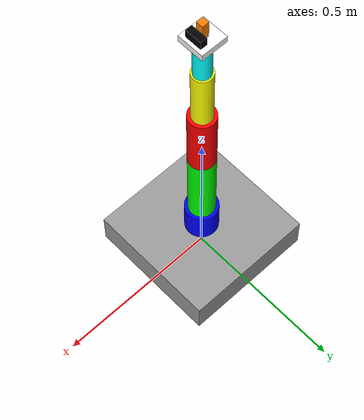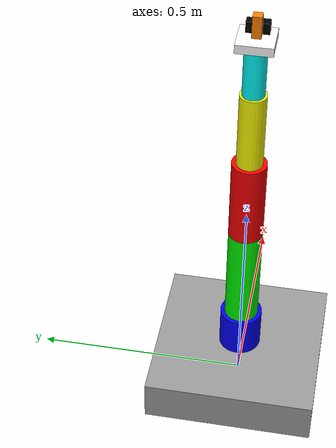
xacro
<?xml version="1.0"?>
<robot name="my_robot" xmlns:xacro="http://www.ros.org/wiki/xacro">
<link name="world"/>

  <joint name="base_joint" type="fixed">
    <parent link="world"/>
    <child link="base_link"/>
    <origin xyz="0 0 0" rpy="0 0 0"/>
  </joint>

  <!-- SAFE INERTIAL MACRO -->
  <xacro:macro name="box_inertial" params="mass x y z">
    <inertial>
      <origin xyz="0 0 ${z/2}"/>
      <mass value="${mass}"/>
      <inertia
        ixx="${mass * (y*y + z*z) / 12}"
        iyy="${mass * (x*x + z*z) / 12}"
        izz="${mass * (x*x + y*y) / 12}"
        ixy="0.0"
        ixz="0.0"
        iyz="0.0"/>
    </inertial>
  </xacro:macro>

  <!-- BASE -->
  <link name="base_link">
    <xacro:box_inertial mass="5.0" x="0.4" y="0.4" z="0.1"/>

    <visual>
      <origin xyz="0 0 0.05"/>
      <geometry><box size="0.4 0.4 0.1"/></geometry>
      <material name="gray"><color rgba="0.6 0.6 0.6 1"/></material>
    </visual>

    <collision>
      <origin xyz="0 0 0.05"/>
      <geometry><box size="0.4 0.4 0.1"/></geometry>
    </collision>
  </link>

  <!-- LINKS -->

  <link name="shoulder_link">
    <xacro:box_inertial mass="2.0" x="0.1" y="0.1" z="0.1"/>
    <visual>
      <origin xyz="0 0 0.05"/>
      <geometry><cylinder radius="0.05" length="0.1"/></geometry>
      <material name="blue"><color rgba="0 0 1 1"/></material>
    </visual>
    <collision>
      <origin xyz="0 0 0.05"/>
      <geometry><cylinder radius="0.05" length="0.1"/></geometry>
    </collision>
  </link>

  <link name="arm_link">
    <xacro:box_inertial mass="1.5" x="0.08" y="0.08" z="0.25"/>
    <visual>
      <origin xyz="0 0 0.125"/>
      <geometry><cylinder radius="0.04" length="0.25"/></geometry>
      <material name="green"><color rgba="0 1 0 1"/></material>
    </visual>
    <collision>
      <origin xyz="0 0 0.125"/>
      <geometry><cylinder radius="0.04" length="0.25"/></geometry>
    </collision>
  </link>

  <link name="elbow_link">
    <xacro:box_inertial mass="1.2" x="0.08" y="0.08" z="0.2"/>
    <visual>
      <origin xyz="0 0 0.1"/>
      <geometry><cylinder radius="0.04" length="0.2"/></geometry>
      <material name="red"><color rgba="1 0 0 1"/></material>
    </visual>
    <collision>
      <origin xyz="0 0 0.1"/>
      <geometry><cylinder radius="0.04" length="0.2"/></geometry>
    </collision>
  </link>

  <link name="forearm_link">
    <xacro:box_inertial mass="1.0" x="0.06" y="0.06" z="0.18"/>
    <visual>
      <origin xyz="0 0 0.09"/>
      <geometry><cylinder radius="0.03" length="0.18"/></geometry>
      <material name="yellow"><color rgba="1 1 0 1"/></material>
    </visual>
    <collision>
      <origin xyz="0 0 0.09"/>
      <geometry><cylinder radius="0.03" length="0.18"/></geometry>
    </collision>
  </link>

  <link name="wrist_link">
    <xacro:box_inertial mass="0.8" x="0.05" y="0.05" z="0.12"/>
    <visual>
      <origin xyz="0 0 0.06"/>
      <geometry><cylinder radius="0.025" length="0.12"/></geometry>
      <material name="cyan"><color rgba="0 1 1 1"/></material>
    </visual>
    <collision>
      <origin xyz="0 0 0.06"/>
      <geometry><cylinder radius="0.025" length="0.12"/></geometry>
    </collision>
  </link>

  <link name="hand_link">
    <xacro:box_inertial mass="0.5" x="0.08" y="0.08" z="0.02"/>
    <visual>
      <origin xyz="0 0 0.01"/>
      <geometry><box size="0.08 0.08 0.02"/></geometry>
      <material name="white"><color rgba="1 1 1 1"/></material>
    </visual>
    <collision>
      <origin xyz="0 0 0.01"/>
      <geometry><box size="0.08 0.08 0.02"/></geometry>
    </collision>
  </link>

  <link name="tool_link">
    <xacro:box_inertial mass="0.2" x="0.02" y="0.02" z="0.05"/>
    <visual>
      <origin xyz="0 0 0.025"/>
      <geometry><box size="0.02 0.02 0.05"/></geometry>
      <material name="orange"><color rgba="1 0.5 0 1"/></material>
    </visual>
    <collision>
      <origin xyz="0 0 0.025"/>
      <geometry><box size="0.02 0.02 0.05"/></geometry>
    </collision>
  </link>

  <!-- JOINTS -->

  <joint name="joint1" type="revolute">
    <parent link="base_link"/>
    <child link="shoulder_link"/>
    <origin xyz="0 0 0.1"/>
    <axis xyz="0 0 1"/>
    <limit lower="-3.14" upper="3.14" effort="50" velocity="2"/>
  </joint>

  <joint name="joint2" type="revolute">
    <parent link="shoulder_link"/>
    <child link="arm_link"/>
    <origin xyz="0 0 0.1"/>
    <axis xyz="0 1 0"/>
    <limit lower="-1.57" upper="1.57" effort="50" velocity="2"/>
  </joint>

  <joint name="joint3" type="revolute">
    <parent link="arm_link"/>
    <child link="elbow_link"/>
    <origin xyz="0 0 0.25"/>
    <axis xyz="0 1 0"/>
    <limit lower="-1.57" upper="1.57" effort="40" velocity="2"/>
  </joint>

  <joint name="joint4" type="revolute">
    <parent link="elbow_link"/>
    <child link="forearm_link"/>
    <origin xyz="0 0 0.2"/>
    <axis xyz="1 0 0"/>
    <limit lower="-3.14" upper="3.14" effort="30" velocity="2"/>
  </joint>

  <joint name="joint5" type="revolute">
    <parent link="forearm_link"/>
    <child link="wrist_link"/>
    <origin xyz="0 0 0.18"/>
    <axis xyz="0 1 0"/>
    <limit lower="-1.57" upper="1.57" effort="20" velocity="2"/>
  </joint>

  <joint name="joint6" type="continuous">
    <parent link="wrist_link"/>
    <child link="hand_link"/>
    <origin xyz="0 0 0.12"/>
    <axis xyz="0 0 1"/>
  </joint>

  <joint name="hand_tool_joint" type="fixed">
    <parent link="hand_link"/>
    <child link="tool_link"/>
    <origin xyz="0 0 0.02"/>
  </joint>

<!-- GAZEBO MATERIAL FIX -->

<gazebo reference="base_link">
  <material>Gazebo/Grey</material>
</gazebo>

<gazebo reference="shoulder_link">
  <material>Gazebo/Blue</material>
</gazebo>

<gazebo reference="arm_link">
  <material>Gazebo/Green</material>
</gazebo>

<gazebo reference="elbow_link">
  <material>Gazebo/Red</material>
</gazebo>

<gazebo reference="forearm_link">
  <material>Gazebo/Yellow</material>
</gazebo>

<gazebo reference="wrist_link">
  <material>Gazebo/Cyan</material>
</gazebo>

<gazebo reference="hand_link">
  <material>Gazebo/White</material>
</gazebo>

<gazebo reference="tool_link">
  <material>Gazebo/Orange</material>
</gazebo>

<ros2_control name="GazeboSystem" type="system">
    <hardware>
      <plugin>gazebo_ros2_control/GazeboSystem</plugin>
    </hardware>

    <joint name="joint1">
      <command_interface name="position"/>
      <state_interface name="position">
        <param name="initial_value">0.0</param>
      </state_interface>
      <state_interface name="velocity"/>
    </joint>
    <joint name="joint2">
      <command_interface name="position"/>
      <state_interface name="position"/>
      <state_interface name="velocity"/>
    </joint>
    <joint name="joint3">
      <command_interface name="position"/>
      <state_interface name="position"/>
      <state_interface name="velocity"/>
    </joint>
    <joint name="joint4">
      <command_interface name="position"/>
      <state_interface name="position"/>
      <state_interface name="velocity"/>
    </joint>
    <joint name="joint5">
      <command_interface name="position"/>
      <state_interface name="position"/>
      <state_interface name="velocity"/>
    </joint>
    <joint name="joint6">
      <command_interface name="position"/>
      <state_interface name="position"/>
      <state_interface name="velocity"/>
    </joint>
  </ros2_control>

  <gazebo>
    <plugin name="gazebo_ros2_control" filename="libgazebo_ros2_control.so">
      <parameters>$(find my_robot_moveit_config)/config/ros2_controllers.yaml</parameters>
    </plugin>
  </gazebo>

  <link name="camera_link">
    <visual>
      <geometry><box size="0.02 0.05 0.05"/></geometry>
      <material name="black"><color rgba="0 0 0 1"/></material>
    </visual>
    <xacro:box_inertial mass="0.1" x="0.02" y="0.05" z="0.05"/>
  </link>

  <joint name="camera_joint" type="fixed">
    <parent link="tool_link"/>
    <child link="camera_link"/>
    <origin xyz="0.02 0 0" rpy="0 0 0"/>
  </joint>

  <gazebo reference="camera_link">
    <sensor type="camera" name="camera1">
      <update_rate>30.0</update_rate>
      <camera name="head">
        <horizontal_fov>1.3962634</horizontal_fov>
        <image>
          <width>800</width>
          <height>600</height>
          <format>R8G8B8</format>
        </image>
        <clip>
          <near>0.02</near>
          <far>300</far>
        </clip>
      </camera>
      <plugin name="camera_controller" filename="libgazebo_ros_camera.so">
        <frame_name>camera_link</frame_name>
      </plugin>
    </sensor>
  </gazebo>

</robot>
